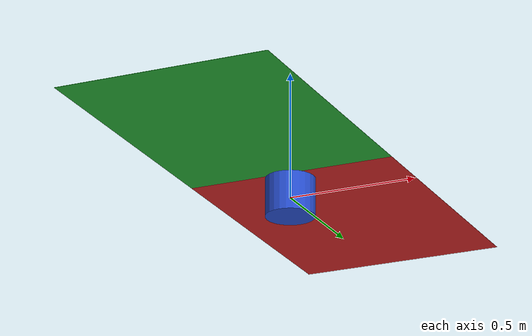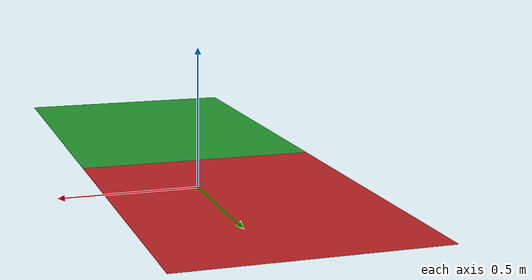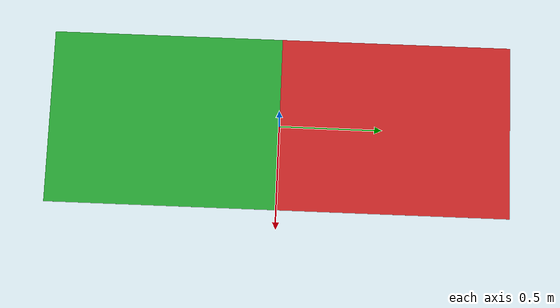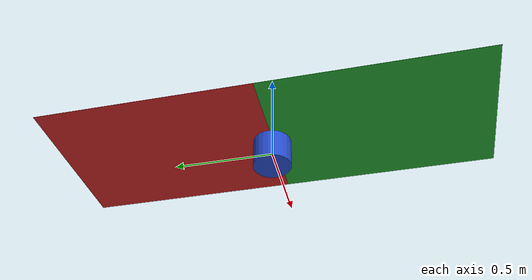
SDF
<?xml version="1.0" ?>
<sdf version="1.7">
  <model name="cansat">

    <plugin name="p3d_base_controller" filename="libgazebo_ros_p3d.so">
      <ros>
        <namespace>/cansat</namespace>
        <remapping>odom:=odom</remapping>
      </ros>
      <body_name>body</body_name>
      <frame_name>world</frame_name>
      <update_rate>50.0</update_rate>
      <xyz_offset>0 0 0</xyz_offset>
      <rpy_offset>0 0 0</rpy_offset>
      <gaussian_noise>0.01</gaussian_noise>
    </plugin>

    <link name="body">
      <pose>0 0 0 0 0 0</pose>
      <inertial>
          <mass>0.9472</mass>
        <inertia>
            <ixx>0.05</ixx>  <ixy>0</ixy> <ixz>0</ixz>
            <iyy>0.05</iyy>  <iyz>0</iyz>
            <izz>0.43</izz>
        </inertia>
      </inertial>

      <visual name="body_visual">
        <geometry><cylinder><radius>0.095</radius><length>0.15</length></cylinder></geometry>
        <material>
          <script>
            <uri>file://media/materials/scripts/gazebo.material</uri>
            <name>Gazebo/Blue</name>
          </script>
        </material>
      </visual>

      <collision name="body_collision">
        <geometry><cylinder><radius>0.095</radius><length>0.15</length></cylinder></geometry>
      </collision>

      <sensor name="camera_down" type="camera">
        <pose>0 0 -0.075 0 1.5708 0</pose>
        <visualize>true</visualize>
        <update_rate>30</update_rate>
        <camera>
          <horizontal_fov>1.047</horizontal_fov>
          <image><width>1280</width><height>720</height><format>R8G8B8</format></image>
          <clip><near>0.01</near><far>1000</far></clip>
        </camera>
        <plugin name="camera_controller" filename="libgazebo_ros_camera.so">
          <ros>
            <namespace>/cansat</namespace>
            <remapping>image_raw:=camera/image</remapping>
            <remapping>camera_info:=camera/camera_info</remapping>
          </ros>
          <frame_name>body</frame_name> </plugin>
      </sensor>

      <sensor name="imu_sensor" type="imu">
        <always_on>true</always_on>
        <update_rate>100</update_rate>
        <plugin name="imu_plugin" filename="libgazebo_ros_imu_sensor.so">
          <ros>
            <namespace>/cansat</namespace>
            <remapping>~/out:=imu</remapping>
          </ros>
          <initial_orientation_as_reference>false</initial_orientation_as_reference>
        </plugin>
      </sensor>
    </link>

    <link name="parafoil_left">
      <pose>0 0.55 0.1 0 0 0</pose>
      <inertial>
        <mass>0.048</mass>
        <inertia>
          <ixx>0.019</ixx> <iyy>0.0025</iyy> <izz>0.0215</izz>
        </inertia>
      </inertial>
      <visual name="visual">
        <geometry><box><size>0.82 1.1 0.001</size></box></geometry>
        <material><script><name>Gazebo/Red</name></script></material>
      </visual>
      <collision name="collision">
        <geometry><box><size>0.82 1.1 0.001</size></box></geometry>
      </collision>
    </link>

    <joint name="joint_left" type="revolute">
          <parent>body</parent>
          <child>parafoil_left</child>
          <axis>
            <xyz>0 1 0</xyz>
            <limit>
              <lower>-0.785</lower>
              <upper>0.785</upper>
              <effort>50.0</effort>   <velocity>5.0</velocity> </limit>
            <dynamics>
              <damping>0.5</damping>
              <friction>0.1</friction>
            </dynamics>
          </axis>
        </joint>

    <plugin name="lift_drag_left" filename="libLiftDragPlugin.so">
      <a0>0.0</a0> <cla>0.4</cla> <cda>0.365</cda> <cma>0.0</cma>
      <alpha_stall>0.33</alpha_stall> <cla_stall>-0.2</cla_stall>
      <cda_stall>1.0</cda_stall>
      <cp>0 0 0</cp> <area>0.9</area> <air_density>1.225</air_density>
      <forward>1 0 0</forward> <upward>0 0 1</upward>
      <link_name>parafoil_left</link_name>
    </plugin>

    <link name="parafoil_right">
      <pose>0 -0.55 0.1 0 0 0</pose>
      <inertial>
        <mass>0.048</mass>
        <inertia>
          <ixx>0.019</ixx> <iyy>0.0025</iyy> <izz>0.0215</izz>
        </inertia>
      </inertial>
      <visual name="visual">
        <geometry><box><size>0.82 1.1 0.001</size></box></geometry>
        <material><script><name>Gazebo/Green</name></script></material>
      </visual>
      <collision name="collision">
        <geometry><box><size>0.82 1.1 0.001</size></box></geometry>
      </collision>
    </link>
  <joint name="joint_right" type="revolute">
        <parent>body</parent>
        <child>parafoil_right</child>
        <axis>
          <xyz>0 1 0</xyz>
          <limit>
            <lower>-0.785</lower>
            <upper>0.785</upper>
            <effort>50.0</effort>
            <velocity>5.0</velocity>
          </limit>
          <dynamics>
            <damping>0.5</damping>
            <friction>0.1</friction>
          </dynamics>
        </axis>
      </joint>

    <plugin name="lift_drag_right" filename="libLiftDragPlugin.so">
      <a0>0.0</a0>
      <cla>0.4</cla> <cda>0.365</cda> <cma>0.0</cma>
      <alpha_stall>0.33</alpha_stall> <cla_stall>-0.2</cla_stall>
      <cda_stall>1.0</cda_stall>
      <cp>0 0 0</cp> <area>0.9</area> <air_density>1.225</air_density>
      <forward>1 0 0</forward> <upward>0 0 1</upward>
      <link_name>parafoil_right</link_name>
    </plugin>

    <plugin name="left_arm_force" filename="libgazebo_ros_force.so">
      <ros>
        <namespace>/cansat</namespace>
        <remapping>gazebo_ros_force:=left_arm_cmd</remapping>
      </ros>
      <link_name>parafoil_left</link_name>
      <force_frame>link</force_frame>
    </plugin>

    <plugin name="right_arm_force" filename="libgazebo_ros_force.so">
      <ros>
        <namespace>/cansat</namespace>
        <remapping>gazebo_ros_force:=right_arm_cmd</remapping>
      </ros>
      <link_name>parafoil_right</link_name>
      <force_frame>link</force_frame>
    </plugin>

  </model>
</sdf>
